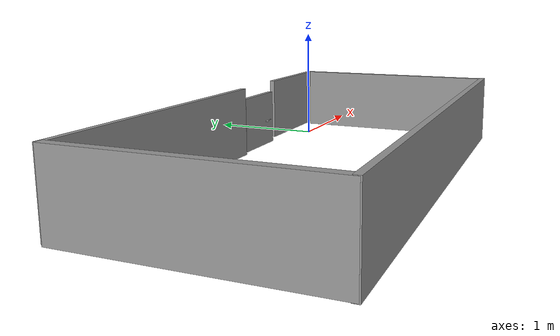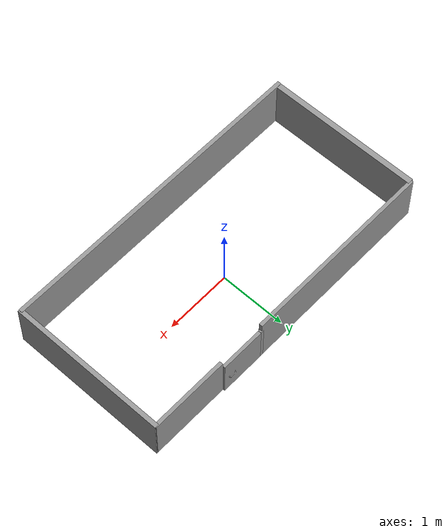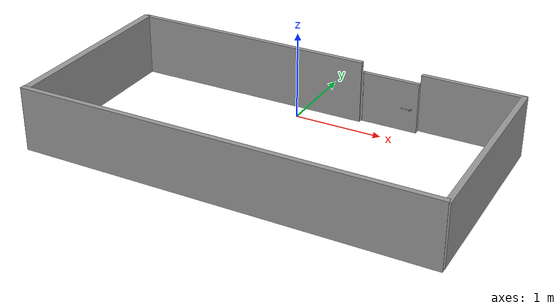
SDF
<?xml version='1.0'?>
<sdf version='1.7'>
  <model name='room'>
    <link name='link_1'>
      <inertial>
        <mass>0.125423</mass>
        <inertia>
          <ixx>0.00613653</ixx>
          <ixy>0</ixy>
          <ixz>0</ixz>
          <iyy>0.100576</iyy>
          <iyz>0</iyz>
          <izz>0.0945024</izz>
        </inertia>
        <pose>0 0 0 0 -0 0</pose>
      </inertial>
      <pose>-1.14368 0.95466 -0.024889 0 -0 0</pose>
      <gravity>1</gravity>
      <self_collide>0</self_collide>
      <kinematic>0</kinematic>
      <enable_wind>0</enable_wind>
      <visual name='visual'>
        <pose>0 0 0 0 -0 0</pose>
        <geometry>
          <box>
            <size>3.00643 0.054903 0.764268</size>
          </box>
        </geometry>
        <material>
          <lighting>1</lighting>
          <script>
            <uri>file://media/materials/scripts/gazebo.material</uri>
            <name>Gazebo/Grey</name>
          </script>
          <shader type='pixel'>
            <normal_map>__default__</normal_map>
          </shader>
        </material>
        <transparency>0</transparency>
        <cast_shadows>1</cast_shadows>
      </visual>
      <collision name='collision'>
        <laser_retro>0</laser_retro>
        <max_contacts>10</max_contacts>
        <pose>0 0 0 0 -0 0</pose>
        <geometry>
          <box>
            <size>3.00643 0.054903 0.764268</size>
          </box>
        </geometry>
        <surface>
          <friction>
            <ode>
              <mu>1</mu>
              <mu2>1</mu2>
              <fdir1>0 0 0</fdir1>
              <slip1>0</slip1>
              <slip2>0</slip2>
            </ode>
            <torsional>
              <coefficient>1</coefficient>
              <patch_radius>0</patch_radius>
              <surface_radius>0</surface_radius>
              <use_patch_radius>1</use_patch_radius>
              <ode>
                <slip>0</slip>
              </ode>
            </torsional>
          </friction>
          <bounce>
            <restitution_coefficient>0</restitution_coefficient>
            <threshold>1e+06</threshold>
          </bounce>
          <contact>
            <collide_without_contact>0</collide_without_contact>
            <collide_without_contact_bitmask>1</collide_without_contact_bitmask>
            <collide_bitmask>1</collide_bitmask>
            <ode>
              <soft_cfm>0</soft_cfm>
              <soft_erp>0.2</soft_erp>
              <kp>1e+13</kp>
              <kd>1</kd>
              <max_vel>0.01</max_vel>
              <min_depth>0</min_depth>
            </ode>
            <bullet>
              <split_impulse>1</split_impulse>
              <split_impulse_penetration_threshold>-0.01</split_impulse_penetration_threshold>
              <soft_cfm>0</soft_cfm>
              <soft_erp>0.2</soft_erp>
              <kp>1e+13</kp>
              <kd>1</kd>
            </bullet>
          </contact>
        </surface>
      </collision>
    </link>
    <link name='link_2'>
      <inertial>
        <mass>0.0462245</mass>
        <inertia>
          <ixx>0.00191101</ixx>
          <ixy>0</ixy>
          <ixz>0</ixz>
          <iyy>0.00744204</iyy>
          <iyz>0</iyz>
          <izz>0.00555423</izz>
        </inertia>
        <pose>0 0 0 0 -0 0</pose>
      </inertial>
      <pose>1.69085 0.952934 0.010124 0 -0 0</pose>
      <self_collide>0</self_collide>
      <enable_wind>0</enable_wind>
      <kinematic>0</kinematic>
      <visual name='visual'>
        <pose>0 0 0 0 -0 0</pose>
        <geometry>
          <box>
            <size>1.19953 0.054866 0.702206</size>
          </box>
        </geometry>
        <material>
          <lighting>1</lighting>
          <script>
            <uri>file://media/materials/scripts/gazebo.material</uri>
            <name>Gazebo/Grey</name>
          </script>
          <shader type='pixel'/>
        </material>
        <transparency>0</transparency>
        <cast_shadows>1</cast_shadows>
      </visual>
      <collision name='collision'>
        <laser_retro>0</laser_retro>
        <max_contacts>10</max_contacts>
        <pose>0 0 0 0 -0 0</pose>
        <geometry>
          <box>
            <size>1.19953 0.054866 0.702206</size>
          </box>
        </geometry>
        <surface>
          <friction>
            <ode>
              <mu>1</mu>
              <mu2>1</mu2>
              <fdir1>0 0 0</fdir1>
              <slip1>0</slip1>
              <slip2>0</slip2>
            </ode>
            <torsional>
              <coefficient>1</coefficient>
              <patch_radius>0</patch_radius>
              <surface_radius>0</surface_radius>
              <use_patch_radius>1</use_patch_radius>
              <ode>
                <slip>0</slip>
              </ode>
            </torsional>
          </friction>
          <bounce>
            <restitution_coefficient>0</restitution_coefficient>
            <threshold>1e+06</threshold>
          </bounce>
          <contact>
            <collide_without_contact>0</collide_without_contact>
            <collide_without_contact_bitmask>1</collide_without_contact_bitmask>
            <collide_bitmask>1</collide_bitmask>
            <ode>
              <soft_cfm>0</soft_cfm>
              <soft_erp>0.2</soft_erp>
              <kp>1e+13</kp>
              <kd>1</kd>
              <max_vel>0.01</max_vel>
              <min_depth>0</min_depth>
            </ode>
            <bullet>
              <split_impulse>1</split_impulse>
              <split_impulse_penetration_threshold>-0.01</split_impulse_penetration_threshold>
              <soft_cfm>0</soft_cfm>
              <soft_erp>0.2</soft_erp>
              <kp>1e+13</kp>
              <kd>1</kd>
            </bullet>
          </contact>
        </surface>
      </collision>
    </link>
    <link name='link_4'>
      <inertial>
        <mass>0.119228</mass>
        <inertia>
          <ixx>0.0635032</ixx>
          <ixy>0</ixy>
          <ixz>0</ixz>
          <iyy>0.0053794</iyy>
          <iyz>0</iyz>
          <izz>0.0582137</izz>
        </inertia>
        <pose>0 0 0 0 -0 0</pose>
      </inertial>
      <pose>2.26979 -0.239646 -0.005099 0 -0 0</pose>
      <self_collide>0</self_collide>
      <enable_wind>0</enable_wind>
      <kinematic>0</kinematic>
      <visual name='visual'>
        <pose>0 0 0 0 -0 0</pose>
        <geometry>
          <box>
            <size>0.067282 2.41962 0.732733</size>
          </box>
        </geometry>
        <material>
          <lighting>1</lighting>
          <script>
            <uri>file://media/materials/scripts/gazebo.material</uri>
            <name>Gazebo/Grey</name>
          </script>
          <shader type='pixel'/>
        </material>
        <transparency>0</transparency>
        <cast_shadows>1</cast_shadows>
      </visual>
      <collision name='collision'>
        <laser_retro>0</laser_retro>
        <max_contacts>10</max_contacts>
        <pose>0 0 0 0 -0 0</pose>
        <geometry>
          <box>
            <size>0.067282 2.41962 0.732733</size>
          </box>
        </geometry>
        <surface>
          <friction>
            <ode>
              <mu>1</mu>
              <mu2>1</mu2>
              <fdir1>0 0 0</fdir1>
              <slip1>0</slip1>
              <slip2>0</slip2>
            </ode>
            <torsional>
              <coefficient>1</coefficient>
              <patch_radius>0</patch_radius>
              <surface_radius>0</surface_radius>
              <use_patch_radius>1</use_patch_radius>
              <ode>
                <slip>0</slip>
              </ode>
            </torsional>
          </friction>
          <bounce>
            <restitution_coefficient>0</restitution_coefficient>
            <threshold>1e+06</threshold>
          </bounce>
          <contact>
            <collide_without_contact>0</collide_without_contact>
            <collide_without_contact_bitmask>1</collide_without_contact_bitmask>
            <collide_bitmask>1</collide_bitmask>
            <ode>
              <soft_cfm>0</soft_cfm>
              <soft_erp>0.2</soft_erp>
              <kp>1e+13</kp>
              <kd>1</kd>
              <max_vel>0.01</max_vel>
              <min_depth>0</min_depth>
            </ode>
            <bullet>
              <split_impulse>1</split_impulse>
              <split_impulse_penetration_threshold>-0.01</split_impulse_penetration_threshold>
              <soft_cfm>0</soft_cfm>
              <soft_erp>0.2</soft_erp>
              <kp>1e+13</kp>
              <kd>1</kd>
            </bullet>
          </contact>
        </surface>
      </collision>
    </link>
    <link name='link_5'>
      <inertial>
        <mass>0.239127</mass>
        <inertia>
          <ixx>0.0121759</ixx>
          <ixy>0</ixy>
          <ixz>0</ixz>
          <iyy>0.500678</iyy>
          <iyz>0</iyz>
          <izz>0.488656</izz>
        </inertia>
        <pose>0 0 0 0 -0 0</pose>
      </inertial>
      <pose>-0.192505 -1.42291 -0.023103 0 -0 0</pose>
      <self_collide>0</self_collide>
      <enable_wind>0</enable_wind>
      <kinematic>0</kinematic>
      <visual name='visual'>
        <pose>0 0 0 0 -0 0</pose>
        <geometry>
          <box>
            <size>4.95158 0.062118 0.779203</size>
          </box>
        </geometry>
        <material>
          <lighting>1</lighting>
          <script>
            <uri>file://media/materials/scripts/gazebo.material</uri>
            <name>Gazebo/Grey</name>
          </script>
          <shader type='pixel'/>
        </material>
        <transparency>0</transparency>
        <cast_shadows>1</cast_shadows>
      </visual>
      <collision name='collision'>
        <laser_retro>0</laser_retro>
        <max_contacts>10</max_contacts>
        <pose>0 0 0 0 -0 0</pose>
        <geometry>
          <box>
            <size>4.95158 0.062118 0.779203</size>
          </box>
        </geometry>
        <surface>
          <friction>
            <ode>
              <mu>1</mu>
              <mu2>1</mu2>
              <fdir1>0 0 0</fdir1>
              <slip1>0</slip1>
              <slip2>0</slip2>
            </ode>
            <torsional>
              <coefficient>1</coefficient>
              <patch_radius>0</patch_radius>
              <surface_radius>0</surface_radius>
              <use_patch_radius>1</use_patch_radius>
              <ode>
                <slip>0</slip>
              </ode>
            </torsional>
          </friction>
          <bounce>
            <restitution_coefficient>0</restitution_coefficient>
            <threshold>1e+06</threshold>
          </bounce>
          <contact>
            <collide_without_contact>0</collide_without_contact>
            <collide_without_contact_bitmask>1</collide_without_contact_bitmask>
            <collide_bitmask>1</collide_bitmask>
            <ode>
              <soft_cfm>0</soft_cfm>
              <soft_erp>0.2</soft_erp>
              <kp>1e+13</kp>
              <kd>1</kd>
              <max_vel>0.01</max_vel>
              <min_depth>0</min_depth>
            </ode>
            <bullet>
              <split_impulse>1</split_impulse>
              <split_impulse_penetration_threshold>-0.01</split_impulse_penetration_threshold>
              <soft_cfm>0</soft_cfm>
              <soft_erp>0.2</soft_erp>
              <kp>1e+13</kp>
              <kd>1</kd>
            </bullet>
          </contact>
        </surface>
      </collision>
    </link>
    <link name='link_6'>
      <inertial>
        <mass>0.162063</mass>
        <inertia>
          <ixx>0.0854528</ixx>
          <ixy>0</ixy>
          <ixz>0</ixz>
          <iyy>0.00812041</iyy>
          <iyz>0</iyz>
          <izz>0.0775411</izz>
        </inertia>
        <pose>0 0 0 0 -0 0</pose>
      </inertial>
      <pose>-2.62446 -0.245042 -0.024165 0 -0 0</pose>
      <self_collide>0</self_collide>
      <enable_wind>0</enable_wind>
      <kinematic>0</kinematic>
      <visual name='visual'>
        <pose>0 0 0 0 -0 0</pose>
        <geometry>
          <box>
            <size>0.087916 2.39454 0.770421</size>
          </box>
        </geometry>
        <material>
          <lighting>1</lighting>
          <script>
            <uri>file://media/materials/scripts/gazebo.material</uri>
            <name>Gazebo/Grey</name>
          </script>
          <shader type='pixel'/>
        </material>
        <transparency>0</transparency>
        <cast_shadows>1</cast_shadows>
      </visual>
      <collision name='collision'>
        <laser_retro>0</laser_retro>
        <max_contacts>10</max_contacts>
        <pose>0 0 0 0 -0 0</pose>
        <geometry>
          <box>
            <size>0.087916 2.39454 0.770421</size>
          </box>
        </geometry>
        <surface>
          <friction>
            <ode>
              <mu>1</mu>
              <mu2>1</mu2>
              <fdir1>0 0 0</fdir1>
              <slip1>0</slip1>
              <slip2>0</slip2>
            </ode>
            <torsional>
              <coefficient>1</coefficient>
              <patch_radius>0</patch_radius>
              <surface_radius>0</surface_radius>
              <use_patch_radius>1</use_patch_radius>
              <ode>
                <slip>0</slip>
              </ode>
            </torsional>
          </friction>
          <bounce>
            <restitution_coefficient>0</restitution_coefficient>
            <threshold>1e+06</threshold>
          </bounce>
          <contact>
            <collide_without_contact>0</collide_without_contact>
            <collide_without_contact_bitmask>1</collide_without_contact_bitmask>
            <collide_bitmask>1</collide_bitmask>
            <ode>
              <soft_cfm>0</soft_cfm>
              <soft_erp>0.2</soft_erp>
              <kp>1e+13</kp>
              <kd>1</kd>
              <max_vel>0.01</max_vel>
              <min_depth>0</min_depth>
            </ode>
            <bullet>
              <split_impulse>1</split_impulse>
              <split_impulse_penetration_threshold>-0.01</split_impulse_penetration_threshold>
              <soft_cfm>0</soft_cfm>
              <soft_erp>0.2</soft_erp>
              <kp>1e+13</kp>
              <kd>1</kd>
            </bullet>
          </contact>
        </surface>
      </collision>
    </link>
    <model name='door-model'>
      <link name='link_0'>
        <inertial>
          <mass>50</mass>
          <inertia>
            <ixx>0.11</ixx>
            <ixy>0.1</ixy>
            <ixz>0.1</ixz>
            <iyy>0.1</iyy>
            <iyz>0.1</iyz>
            <izz>0.1</izz>
          </inertia>
          <pose>0 0 0 0 -0 0</pose>
        </inertial>
        <pose>0 0 0 0 -0 0</pose>
        <gravity>1</gravity>
        <self_collide>0</self_collide>
        <kinematic>0</kinematic>
        <enable_wind>0</enable_wind>
        <visual name='visual'>
          <pose>0 0 0 0 -0 0</pose>
          <geometry>
            <mesh>
              <uri>./FinalDoorHopefully-HHandles.stl</uri>
              <scale>0.001 0.001 0.001</scale>
            </mesh>
          </geometry>
          <material>
            <lighting>1</lighting>
            <script>
              <uri>file://media/materials/scripts/gazebo.material</uri>
              <name>Gazebo/Grey</name>
            </script>
            <shader type='pixel'>
              <normal_map>__default__</normal_map>
            </shader>
            <ambient>0.3 0.3 0.3 1</ambient>
            <diffuse>0.7 0.7 0.7 1</diffuse>
            <specular>0.01 0.01 0.01 1</specular>
            <emissive>0 0 0 1</emissive>
          </material>
          <transparency>0</transparency>
          <cast_shadows>1</cast_shadows>
        </visual>
        <collision name='collision'>
          <laser_retro>0</laser_retro>
          <max_contacts>10</max_contacts>
          <pose>0 0 0 0 -0 0</pose>
          <geometry>
            <mesh>
              <uri>./FinalDoorHopefully-HHandles.stl</uri>
              <scale>0.001 0.001 0.001</scale>
            </mesh>
          </geometry>
          <surface>
            <friction>
              <ode>
                <mu>1</mu>
                <mu2>1</mu2>
                <fdir1>0 0 0</fdir1>
                <slip1>0</slip1>
                <slip2>0</slip2>
              </ode>
              <torsional>
                <coefficient>1</coefficient>
                <patch_radius>0</patch_radius>
                <surface_radius>0</surface_radius>
                <use_patch_radius>1</use_patch_radius>
                <ode>
                  <slip>0</slip>
                </ode>
              </torsional>
            </friction>
            <bounce>
              <restitution_coefficient>0</restitution_coefficient>
              <threshold>1e+06</threshold>
            </bounce>
            <contact>
              <collide_without_contact>0</collide_without_contact>
              <collide_without_contact_bitmask>1</collide_without_contact_bitmask>
              <collide_bitmask>1</collide_bitmask>
              <ode>
                <soft_cfm>0</soft_cfm>
                <soft_erp>0.2</soft_erp>
                <kp>1e+13</kp>
                <kd>1</kd>
                <max_vel>0.01</max_vel>
                <min_depth>0</min_depth>
              </ode>
              <bullet>
                <split_impulse>1</split_impulse>
                <split_impulse_penetration_threshold>-0.01</split_impulse_penetration_threshold>
                <soft_cfm>0</soft_cfm>
                <soft_erp>0.2</soft_erp>
                <kp>1e+13</kp>
                <kd>1</kd>
              </bullet>
            </contact>
          </surface>
        </collision>
      </link>
      <link name='link_1'>
        <inertial>
          <mass>138.619</mass>
          <inertia>
            <ixx>4.53808</ixx>
            <ixy>0</ixy>
            <ixz>0</ixz>
            <iyy>4.54003</iyy>
            <iyz>0</iyz>
            <izz>0.0512722</izz>
          </inertia>
          <pose>0 0 0 0 -0 0</pose>
        </inertial>
        <pose>-0.02632 0 0.308096 0 -0 0</pose>
        <gravity>0</gravity>
        <self_collide>0</self_collide>
        <kinematic>1</kinematic>
        <enable_wind>0</enable_wind>
        <visual name='visual'>
          <pose>0 0 0 0 -0 0</pose>
          <geometry>
            <box>
              <size>0.048276 0.0462 0.625074</size>
            </box>
          </geometry>
          <material>
            <lighting>1</lighting>
            <script>
              <uri>file://media/materials/scripts/gazebo.material</uri>
              <name>Gazebo/Grey</name>
            </script>
            <shader type='pixel'>
              <normal_map>__default__</normal_map>
            </shader>
            <ambient>0.3 0.3 0.3 1</ambient>
            <diffuse>0.7 0.7 0.7 1</diffuse>
            <specular>0.01 0.01 0.01 1</specular>
            <emissive>0 0 0 1</emissive>
          </material>
          <transparency>0</transparency>
          <cast_shadows>1</cast_shadows>
        </visual>
        <collision name='collision'>
          <laser_retro>0</laser_retro>
          <max_contacts>10</max_contacts>
          <pose>0 0 0 0 -0 0</pose>
          <geometry>
            <box>
              <size>0.048 0.046201 0.625074</size>
            </box>
          </geometry>
          <surface>
            <friction>
              <ode>
                <mu>1</mu>
                <mu2>1</mu2>
                <fdir1>0 0 0</fdir1>
                <slip1>0</slip1>
                <slip2>0</slip2>
              </ode>
              <torsional>
                <coefficient>1</coefficient>
                <patch_radius>0</patch_radius>
                <surface_radius>0</surface_radius>
                <use_patch_radius>1</use_patch_radius>
                <ode>
                  <slip>0</slip>
                </ode>
              </torsional>
            </friction>
            <bounce>
              <restitution_coefficient>0</restitution_coefficient>
              <threshold>1e+06</threshold>
            </bounce>
            <contact>
              <collide_without_contact>0</collide_without_contact>
              <collide_without_contact_bitmask>1</collide_without_contact_bitmask>
              <collide_bitmask>1</collide_bitmask>
              <ode>
                <soft_cfm>0</soft_cfm>
                <soft_erp>0.2</soft_erp>
                <kp>1e+13</kp>
                <kd>1</kd>
                <max_vel>0.01</max_vel>
                <min_depth>0</min_depth>
              </ode>
              <bullet>
                <split_impulse>1</split_impulse>
                <split_impulse_penetration_threshold>-0.01</split_impulse_penetration_threshold>
                <soft_cfm>0</soft_cfm>
                <soft_erp>0.2</soft_erp>
                <kp>1e+13</kp>
                <kd>1</kd>
              </bullet>
            </contact>
          </surface>
        </collision>
      </link>
      <joint name='link_1_JOINT_0' type='revolute'>
        <parent>link_1</parent>
        <child>link_0</child>
        <pose>0 0 0.3 0 -0 0</pose>
        <axis>
          <xyz>0 0 1</xyz>
          <limit>
            <lower>-1.74533</lower>
            <upper>1.74533</upper>
            <effort>-1</effort>
            <velocity>-1</velocity>
          </limit>
          <dynamics>
            <spring_reference>0</spring_reference>
            <spring_stiffness>0</spring_stiffness>
            <damping>0.01</damping>
            <friction>0.01</friction>
          </dynamics>
        </axis>
        <physics>
          <ode>
            <limit>
              <cfm>0</cfm>
              <erp>0.2</erp>
            </limit>
            <suspension>
              <cfm>0</cfm>
              <erp>0.2</erp>
            </suspension>
          </ode>
        </physics>
      </joint>
      <static>0</static>
      <allow_auto_disable>1</allow_auto_disable>
      <pose>0.386741 0.966408 -0.388668 0 -0 0</pose>
    </model>
    <static>1</static>
    <allow_auto_disable>1</allow_auto_disable>
  </model>
</sdf>
